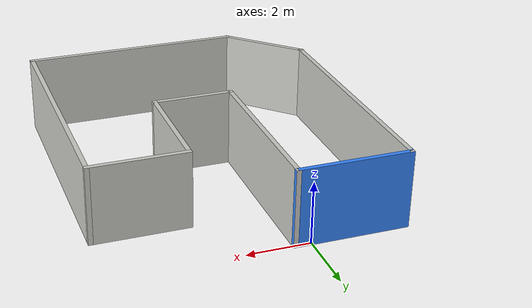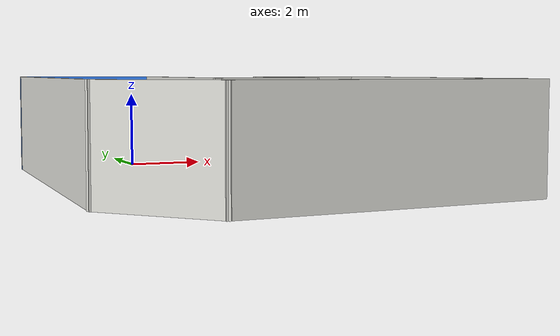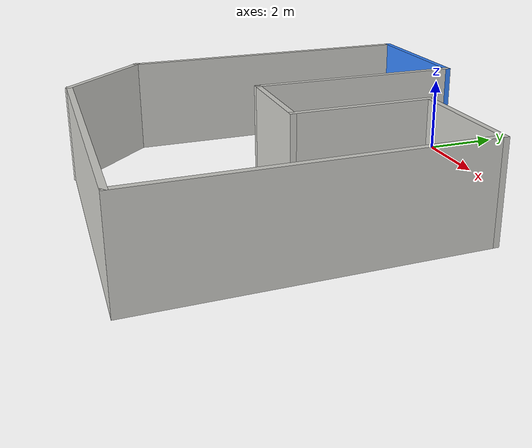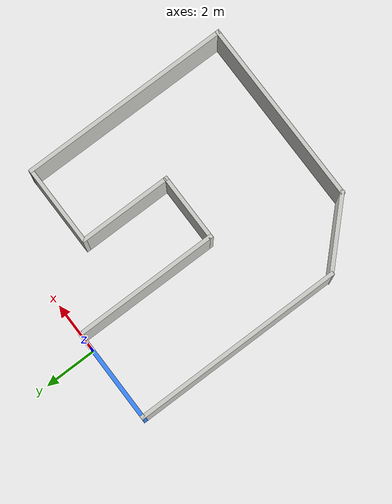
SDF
<?xml version='1.0'?>
<sdf version='1.6'>
  <model name='RoboHouse'>
    <pose frame=''>1.48447 -5.01553 0 0 -0 0</pose>
    <link name='Wall_0'>
      <collision name='Wall_0_Collision'>
        <geometry>
          <box>
            <size>8.15 0.15 2.5</size>
          </box>
        </geometry>
        <pose frame=''>0 0 1.25 0 -0 0</pose>
      </collision>
      <visual name='Wall_0_Visual'>
        <pose frame=''>0 0 1.25 0 -0 0</pose>
        <geometry>
          <box>
            <size>8.15 0.15 2.5</size>
          </box>
        </geometry>
        <material>
          <script>
            <uri>file://media/materials/scripts/gazebo.material</uri>
            <name>Gazebo/CeilingTiled</name>
          </script>
          <ambient>0.215686 0.529412 1 1</ambient>
        </material>
      </visual>
      <pose frame=''>-4.48447 1.01553 0 0 0 -1.5708</pose>
    </link>
    <link name='Wall_1'>
      <collision name='Wall_1_Collision'>
        <geometry>
          <box>
            <size>2.97843 0.15 2.5</size>
          </box>
        </geometry>
        <pose frame=''>0 0 1.25 0 -0 0</pose>
      </collision>
      <visual name='Wall_1_Visual'>
        <pose frame=''>0 0 1.25 0 -0 0</pose>
        <geometry>
          <box>
            <size>2.97843 0.15 2.5</size>
          </box>
        </geometry>
        <material>
          <script>
            <uri>file://media/materials/scripts/gazebo.material</uri>
            <name>Gazebo/CeilingTiled</name>
          </script>
          <ambient>0.215686 0.529412 1 1</ambient>
        </material>
      </visual>
      <pose frame=''>-3.48447 -3.98447 0 0 0 -0.785398</pose>
    </link>
    <link name='Wall_2'>
      <collision name='Wall_2_Collision'>
        <geometry>
          <box>
            <size>7.15 0.15 2.5</size>
          </box>
        </geometry>
        <pose frame=''>0 0 1.25 0 -0 0</pose>
      </collision>
      <visual name='Wall_2_Visual'>
        <pose frame=''>0 0 1.25 0 -0 0</pose>
        <geometry>
          <box>
            <size>7.15 0.15 2.5</size>
          </box>
        </geometry>
        <material>
          <script>
            <uri>file://media/materials/scripts/gazebo.material</uri>
            <name>Gazebo/CeilingTiled</name>
          </script>
          <ambient>0.286275 0.905882 1 1</ambient>
        </material>
      </visual>
      <pose frame=''>1.01553 -4.98447 0 0 -0 0</pose>
    </link>
    <link name='Wall_3'>
      <collision name='Wall_3_Collision'>
        <geometry>
          <box>
            <size>8.15 0.15 2.5</size>
          </box>
        </geometry>
        <pose frame=''>0 0 1.25 0 -0 0</pose>
      </collision>
      <visual name='Wall_3_Visual'>
        <pose frame=''>0 0 1.25 0 -0 0</pose>
        <geometry>
          <box>
            <size>8.15 0.15 2.5</size>
          </box>
        </geometry>
        <material>
          <script>
            <uri>file://media/materials/scripts/gazebo.material</uri>
            <name>Gazebo/CeilingTiled</name>
          </script>
          <ambient>0.435294 0.796078 0.67451 1</ambient>
        </material>
      </visual>
      <pose frame=''>4.51553 -0.984467 0 0 -0 1.5708</pose>
    </link>
    <link name='Wall_4'>
      <collision name='Wall_4_Collision'>
        <geometry>
          <box>
            <size>3.15 0.15 2.5</size>
          </box>
        </geometry>
        <pose frame=''>0 0 1.25 0 -0 0</pose>
      </collision>
      <visual name='Wall_4_Visual'>
        <pose frame=''>0 0 1.25 0 -0 0</pose>
        <geometry>
          <box>
            <size>3.15 0.15 2.5</size>
          </box>
        </geometry>
        <material>
          <script>
            <uri>file://media/materials/scripts/gazebo.material</uri>
            <name>Gazebo/CeilingTiled</name>
          </script>
          <ambient>0.435294 0.796078 0.67451 1</ambient>
        </material>
      </visual>
      <pose frame=''>3.01553 3.01553 0 0 -0 3.14159</pose>
    </link>
    <link name='Wall_5'>
      <collision name='Wall_5_Collision'>
        <geometry>
          <box>
            <size>3.65 0.15 2.5</size>
          </box>
        </geometry>
        <pose frame=''>0 0 1.25 0 -0 0</pose>
      </collision>
      <visual name='Wall_5_Visual'>
        <pose frame=''>0 0 1.25 0 -0 0</pose>
        <geometry>
          <box>
            <size>3.65 0.15 2.5</size>
          </box>
        </geometry>
        <material>
          <script>
            <uri>file://media/materials/scripts/gazebo.material</uri>
            <name>Gazebo/CeilingTiled</name>
          </script>
          <ambient>0.435294 0.796078 0.67451 1</ambient>
        </material>
      </visual>
      <pose frame=''>1.51553 1.26553 0 0 0 -1.5708</pose>
    </link>
    <link name='Wall_6'>
      <collision name='Wall_6_Collision'>
        <geometry>
          <box>
            <size>2.65 0.15 2.5</size>
          </box>
        </geometry>
        <pose frame=''>0 0 1.25 0 -0 0</pose>
      </collision>
      <visual name='Wall_6_Visual'>
        <pose frame=''>0 0 1.25 0 -0 0</pose>
        <geometry>
          <box>
            <size>2.65 0.15 2.5</size>
          </box>
        </geometry>
        <material>
          <script>
            <uri>file://media/materials/scripts/gazebo.material</uri>
            <name>Gazebo/CeilingTiled</name>
          </script>
          <ambient>0.286275 0.905882 1 1</ambient>
        </material>
      </visual>
      <pose frame=''>0.265533 -0.484467 0 0 -0 3.14159</pose>
    </link>
    <link name='Wall_7'>
      <collision name='Wall_7_Collision'>
        <geometry>
          <box>
            <size>5.65 0.15 2.5</size>
          </box>
        </geometry>
        <pose frame=''>0 0 1.25 0 -0 0</pose>
      </collision>
      <visual name='Wall_7_Visual'>
        <pose frame=''>0 0 1.25 0 -0 0</pose>
        <geometry>
          <box>
            <size>5.65 0.15 2.5</size>
          </box>
        </geometry>
        <material>
          <script>
            <uri>file://media/materials/scripts/gazebo.material</uri>
            <name>Gazebo/CeilingTiled</name>
          </script>
          <ambient>0.215686 0.529412 1 1</ambient>
        </material>
      </visual>
      <pose frame=''>-0.984467 2.26553 0 0 -0 1.5708</pose>
    </link>
    <link name='Wall_8'>
      <collision name='Wall_8_Collision'>
        <geometry>
          <box>
            <size>3.65 0.15 2.5</size>
          </box>
        </geometry>
        <pose frame=''>0 0 1.25 0 -0 0</pose>
      </collision>
      <visual name='Wall_8_Visual'>
        <pose frame=''>0 0 1.25 0 -0 0</pose>
        <geometry>
          <box>
            <size>3.65 0.15 2.5</size>
          </box>
        </geometry>
        <material>
          <script>
            <uri>file://media/materials/scripts/gazebo.material</uri>
            <name>Gazebo/Grey</name>
          </script>
          <ambient>0.215686 0.529412 1 1</ambient>
        </material>
      </visual>
      <pose frame=''>-2.73447 5.01553 0 0 -0 3.14159</pose>
    </link>
    <link name='Wall_9'>
      <collision name='Wall_9_Collision'>
        <geometry>
          <box>
            <size>0.15 0.15 2.5</size>
          </box>
        </geometry>
        <pose frame=''>0 0 1.25 0 -0 0</pose>
      </collision>
      <visual name='Wall_9_Visual'>
        <pose frame=''>0 0 1.25 0 -0 0</pose>
        <geometry>
          <box>
            <size>0.15 0.15 2.5</size>
          </box>
        </geometry>
        <material>
          <script>
            <uri>file://media/materials/scripts/gazebo.material</uri>
            <name>Gazebo/CeilingTiled</name>
          </script>
          <ambient>1 1 1 1</ambient>
        </material>
      </visual>
      <pose frame=''>-4.48447 5.01553 0 0 -0 0</pose>
    </link>
    <static>1</static>
  </model>
</sdf>
